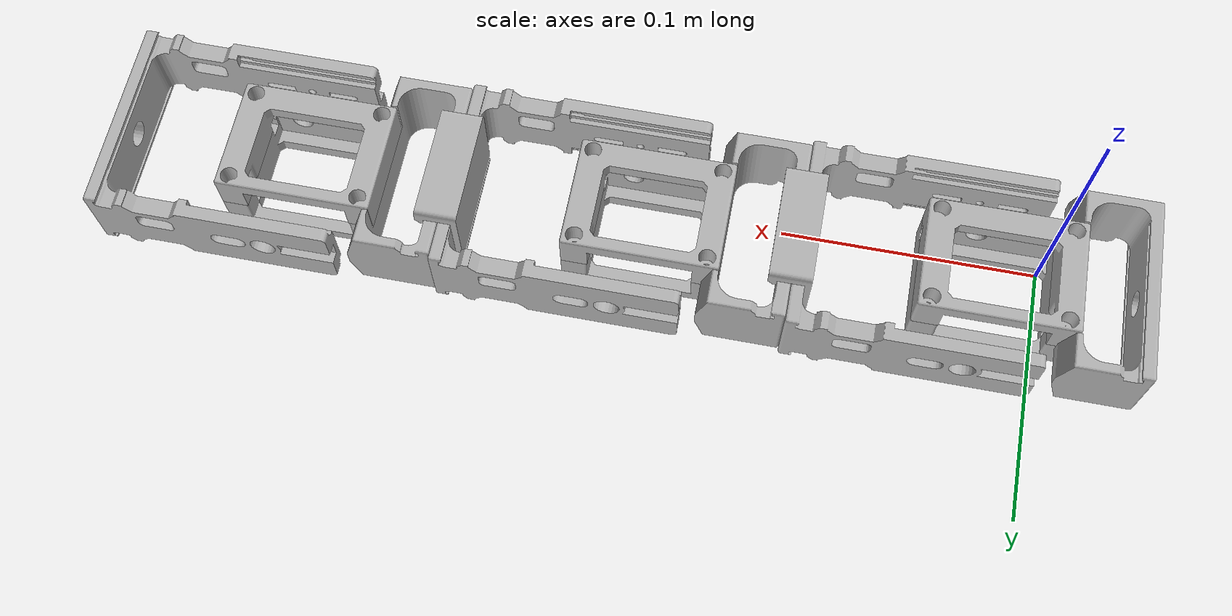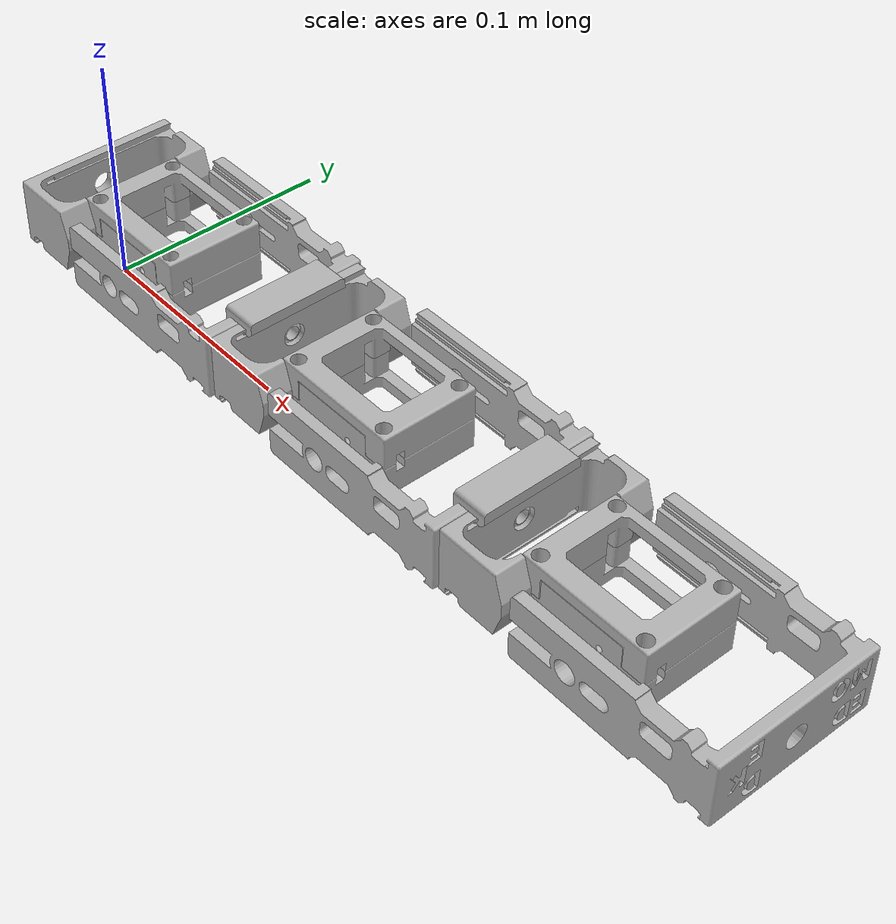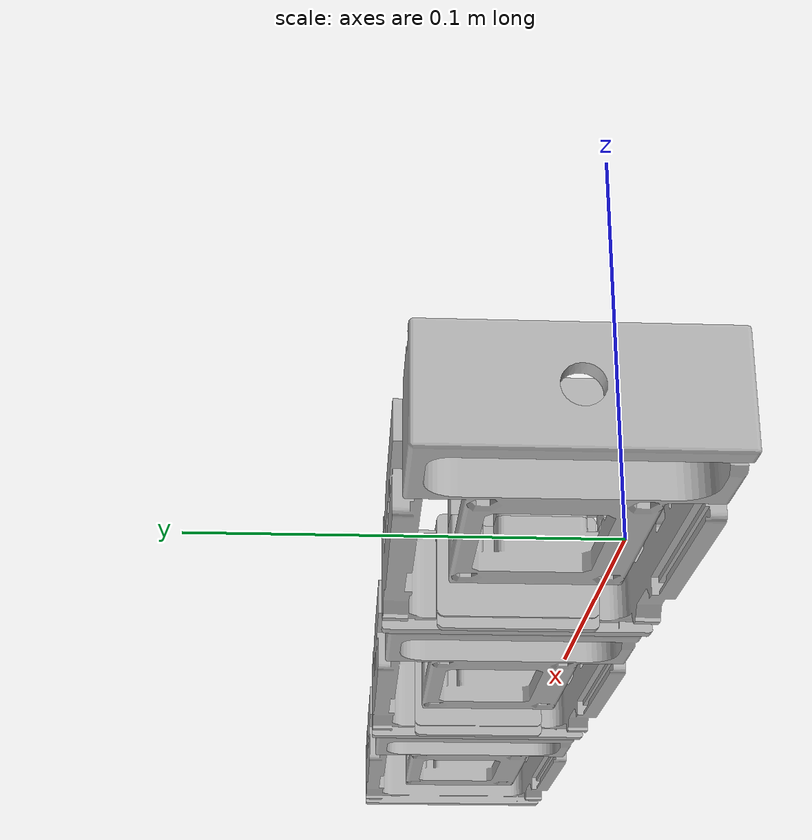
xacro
<?xml version="1.0" ?>
<robot name="edmo_snake" xmlns:xacro="http://www.ros.org/wiki/xacro">

<xacro:include filename="$(find edmo_snake_description)/urdf/materials.xacro" />
<xacro:include filename="$(find edmo_snake_description)/urdf/edmo_snake.trans" />
<xacro:include filename="$(find edmo_snake_description)/urdf/edmo_snake.gazebo" />

<link name="dummy">
</link>

<link name="base_link">
  <inertial>
    <origin xyz="-0.005007218473459374 0.012097251893188315 0.016720619639640767" rpy="0 0 0"/>
    <mass value="0.03847845253485034"/>
    <inertia ixx="2.2e-05" iyy="3.3e-05" izz="4.9e-05" ixy="2e-06" iyz="0.0" ixz="3e-06"/>
  </inertial>
  <visual>
    <origin xyz="0 0 0" rpy="0 0 0"/>
    <geometry>
      <mesh filename="package://edmo_snake_description/meshes/base_link.stl" scale="0.001 0.001 0.001"/>
    </geometry>
    <material name="silver"/>
  </visual>
  <collision>
    <origin xyz="0 0 0" rpy="0 0 0"/>
    <geometry>
      <mesh filename="package://edmo_snake_description/meshes/base_link.stl" scale="0.001 0.001 0.001"/>
    </geometry>
  </collision>
</link>

<link name="arm_1_1">
  <inertial>
    <origin xyz="0.01945776199314793 -0.027540516201431886 0.02290733232110153" rpy="0 0 0"/>
    <mass value="0.03728860045356832"/>
    <inertia ixx="4.1e-05" iyy="3.7e-05" izz="7.3e-05" ixy="0.0" iyz="0.0" ixz="0.0"/>
  </inertial>
  <visual>
    <origin xyz="-0.038414 -0.041832 0.002983" rpy="0 0 0"/>
    <geometry>
      <mesh filename="package://edmo_snake_description/meshes/arm_1_1.stl" scale="0.001 0.001 0.001"/>
    </geometry>
    <material name="silver"/>
  </visual>
  <collision>
    <origin xyz="-0.038414 -0.041832 0.002983" rpy="0 0 0"/>
    <geometry>
      <mesh filename="package://edmo_snake_description/meshes/arm_1_1.stl" scale="0.001 0.001 0.001"/>
    </geometry>
  </collision>
</link>

<link name="cover_1_1">
  <inertial>
    <origin xyz="-0.024705167127436287 0.01692961887353248 0.008504948193972128" rpy="0 0 0"/>
    <mass value="0.014555566232575165"/>
    <inertia ixx="3e-06" iyy="8e-06" izz="1e-05" ixy="-0.0" iyz="0.0" ixz="-0.0"/>
  </inertial>
  <visual>
    <origin xyz="-0.043315 0.003782 -0.02005" rpy="0 0 0"/>
    <geometry>
      <mesh filename="package://edmo_snake_description/meshes/cover_1_1.stl" scale="0.001 0.001 0.001"/>
    </geometry>
    <material name="silver"/>
  </visual>
  <collision>
    <origin xyz="-0.043315 0.003782 -0.02005" rpy="0 0 0"/>
    <geometry>
      <mesh filename="package://edmo_snake_description/meshes/cover_1_1.stl" scale="0.001 0.001 0.001"/>
    </geometry>
  </collision>
</link>

<link name="straight_connector_1_1">
  <inertial>
    <origin xyz="0.002551839107067355 -3.695547974580382e-07 0.007885618930935433" rpy="0 0 0"/>
    <mass value="0.007137238748366013"/>
    <inertia ixx="2e-06" iyy="1e-06" izz="1e-06" ixy="-0.0" iyz="0.0" ixz="-0.0"/>
  </inertial>
  <visual>
    <origin xyz="-0.089365 -0.014468 -0.0201" rpy="0 0 0"/>
    <geometry>
      <mesh filename="package://edmo_snake_description/meshes/straight_connector_1_1.stl" scale="0.001 0.001 0.001"/>
    </geometry>
    <material name="silver"/>
  </visual>
  <collision>
    <origin xyz="-0.089365 -0.014468 -0.0201" rpy="0 0 0"/>
    <geometry>
      <mesh filename="package://edmo_snake_description/meshes/straight_connector_1_1.stl" scale="0.001 0.001 0.001"/>
    </geometry>
  </collision>
</link>

<link name="base_2_1">
  <inertial>
    <origin xyz="0.03347778152654057 -0.0023707481068117025 -0.0033293803603586837" rpy="0 0 0"/>
    <mass value="0.03847845253485034"/>
    <inertia ixx="2.2e-05" iyy="3.3e-05" izz="4.9e-05" ixy="2e-06" iyz="0.0" ixz="3e-06"/>
  </inertial>
  <visual>
    <origin xyz="-0.094365 -0.014468 -0.0201" rpy="0 0 0"/>
    <geometry>
      <mesh filename="package://edmo_snake_description/meshes/base_2_1.stl" scale="0.001 0.001 0.001"/>
    </geometry>
    <material name="silver"/>
  </visual>
  <collision>
    <origin xyz="-0.094365 -0.014468 -0.0201" rpy="0 0 0"/>
    <geometry>
      <mesh filename="package://edmo_snake_description/meshes/base_2_1.stl" scale="0.001 0.001 0.001"/>
    </geometry>
  </collision>
</link>

<link name="cover_2_1">
  <inertial>
    <origin xyz="-0.0247051671274362 0.016929618873532466 0.008504948193972663" rpy="0 0 0"/>
    <mass value="0.014555566232575165"/>
    <inertia ixx="3e-06" iyy="8e-06" izz="1e-05" ixy="-0.0" iyz="0.0" ixz="-0.0"/>
  </inertial>
  <visual>
    <origin xyz="-0.176165 0.003782 -0.0201" rpy="0 0 0"/>
    <geometry>
      <mesh filename="package://edmo_snake_description/meshes/cover_2_1.stl" scale="0.001 0.001 0.001"/>
    </geometry>
    <material name="silver"/>
  </visual>
  <collision>
    <origin xyz="-0.176165 0.003782 -0.0201" rpy="0 0 0"/>
    <geometry>
      <mesh filename="package://edmo_snake_description/meshes/cover_2_1.stl" scale="0.001 0.001 0.001"/>
    </geometry>
  </collision>
</link>

<link name="arm_2_1">
  <inertial>
    <origin xyz="0.019407761993148254 -0.16039051620143224 0.02290733232110207" rpy="0 0 0"/>
    <mass value="0.03728860045356832"/>
    <inertia ixx="4.1e-05" iyy="3.7e-05" izz="7.3e-05" ixy="0.0" iyz="0.0" ixz="0.0"/>
  </inertial>
  <visual>
    <origin xyz="-0.171314 -0.174682 0.002933" rpy="0 0 0"/>
    <geometry>
      <mesh filename="package://edmo_snake_description/meshes/arm_2_1.stl" scale="0.001 0.001 0.001"/>
    </geometry>
    <material name="silver"/>
  </visual>
  <collision>
    <origin xyz="-0.171314 -0.174682 0.002933" rpy="0 0 0"/>
    <geometry>
      <mesh filename="package://edmo_snake_description/meshes/arm_2_1.stl" scale="0.001 0.001 0.001"/>
    </geometry>
  </collision>
</link>

<link name="straight_connector_2_1">
  <inertial>
    <origin xyz="0.002551839107067605 -3.6955479817100956e-07 0.007885618930935943" rpy="0 0 0"/>
    <mass value="0.007137238748366013"/>
    <inertia ixx="2e-06" iyy="1e-06" izz="1e-06" ixy="-0.0" iyz="0.0" ixz="-0.0"/>
  </inertial>
  <visual>
    <origin xyz="-0.222215 -0.014468 -0.02015" rpy="0 0 0"/>
    <geometry>
      <mesh filename="package://edmo_snake_description/meshes/straight_connector_2_1.stl" scale="0.001 0.001 0.001"/>
    </geometry>
    <material name="silver"/>
  </visual>
  <collision>
    <origin xyz="-0.222215 -0.014468 -0.02015" rpy="0 0 0"/>
    <geometry>
      <mesh filename="package://edmo_snake_description/meshes/straight_connector_2_1.stl" scale="0.001 0.001 0.001"/>
    </geometry>
  </collision>
</link>

<link name="base_3_1">
  <inertial>
    <origin xyz="0.03347778152654096 -0.00237074810681245 -0.003329380360358153" rpy="0 0 0"/>
    <mass value="0.03847845253485034"/>
    <inertia ixx="2.2e-05" iyy="3.3e-05" izz="4.9e-05" ixy="2e-06" iyz="0.0" ixz="3e-06"/>
  </inertial>
  <visual>
    <origin xyz="-0.227215 -0.014468 -0.02015" rpy="0 0 0"/>
    <geometry>
      <mesh filename="package://edmo_snake_description/meshes/base_3_1.stl" scale="0.001 0.001 0.001"/>
    </geometry>
    <material name="silver"/>
  </visual>
  <collision>
    <origin xyz="-0.227215 -0.014468 -0.02015" rpy="0 0 0"/>
    <geometry>
      <mesh filename="package://edmo_snake_description/meshes/base_3_1.stl" scale="0.001 0.001 0.001"/>
    </geometry>
  </collision>
</link>

<link name="cover_3_1">
  <inertial>
    <origin xyz="-0.024705167127435923 0.01692961887353178 0.0085049481939732" rpy="0 0 0"/>
    <mass value="0.014555566232575165"/>
    <inertia ixx="3e-06" iyy="8e-06" izz="1e-05" ixy="-0.0" iyz="0.0" ixz="-0.0"/>
  </inertial>
  <visual>
    <origin xyz="-0.309015 0.003782 -0.02015" rpy="0 0 0"/>
    <geometry>
      <mesh filename="package://edmo_snake_description/meshes/cover_3_1.stl" scale="0.001 0.001 0.001"/>
    </geometry>
    <material name="silver"/>
  </visual>
  <collision>
    <origin xyz="-0.309015 0.003782 -0.02015" rpy="0 0 0"/>
    <geometry>
      <mesh filename="package://edmo_snake_description/meshes/cover_3_1.stl" scale="0.001 0.001 0.001"/>
    </geometry>
  </collision>
</link>

<link name="arm_3_1">
  <inertial>
    <origin xyz="0.019357761993148204 -0.29324051620143254 0.022907332321102584" rpy="0 0 0"/>
    <mass value="0.03728860045356832"/>
    <inertia ixx="4.1e-05" iyy="3.7e-05" izz="7.3e-05" ixy="0.0" iyz="0.0" ixz="0.0"/>
  </inertial>
  <visual>
    <origin xyz="-0.304214 -0.307532 0.002883" rpy="0 0 0"/>
    <geometry>
      <mesh filename="package://edmo_snake_description/meshes/arm_3_1.stl" scale="0.001 0.001 0.001"/>
    </geometry>
    <material name="silver"/>
  </visual>
  <collision>
    <origin xyz="-0.304214 -0.307532 0.002883" rpy="0 0 0"/>
    <geometry>
      <mesh filename="package://edmo_snake_description/meshes/arm_3_1.stl" scale="0.001 0.001 0.001"/>
    </geometry>
  </collision>
</link>

<joint name="dummy_joint" type="fixed">
  <parent link="dummy"/>
  <child link="base_link"/>
</joint>

<joint name="Rev1" type="continuous">
  <origin xyz="0.038414 0.041832 -0.002983" rpy="0 0 0"/>
  <parent link="base_link"/>
  <child link="arm_1_1"/>
  <axis xyz="-0.0 1.0 -0.0"/>
</joint>

<joint name="Rigid2" type="fixed">
  <origin xyz="0.043315 -0.003782 0.02005" rpy="0 0 0"/>
  <parent link="base_link"/>
  <child link="cover_1_1"/>
</joint>

<joint name="Rigid3" type="fixed">
  <origin xyz="0.050951 -0.027364 0.023083" rpy="0 0 0"/>
  <parent link="arm_1_1"/>
  <child link="straight_connector_1_1"/>
</joint>

<joint name="Rigid5" type="fixed">
  <origin xyz="0.055951 -0.027364 0.023083" rpy="0 0 0"/>
  <parent link="arm_1_1"/>
  <child link="base_2_1"/>
</joint>

<joint name="Rigid7" type="fixed">
  <origin xyz="0.0818 -0.01825 0.0" rpy="0 0 0"/>
  <parent link="base_2_1"/>
  <child link="cover_2_1"/>
</joint>

<joint name="Rev8" type="continuous">
  <origin xyz="0.076949 0.160214 -0.023033" rpy="0 0 0"/>
  <parent link="base_2_1"/>
  <child link="arm_2_1"/>
  <axis xyz="0.0 1.0 -0.0"/>
</joint>

<joint name="Rigid9" type="fixed">
  <origin xyz="0.050901 -0.160214 0.023083" rpy="0 0 0"/>
  <parent link="arm_2_1"/>
  <child link="straight_connector_2_1"/>
</joint>

<joint name="Rigid10" type="fixed">
  <origin xyz="0.055901 -0.160214 0.023083" rpy="0 0 0"/>
  <parent link="arm_2_1"/>
  <child link="base_3_1"/>
</joint>

<joint name="Rigid12" type="fixed">
  <origin xyz="0.0818 -0.01825 0.0" rpy="0 0 0"/>
  <parent link="base_3_1"/>
  <child link="cover_3_1"/>
</joint>

<joint name="Rev13" type="continuous">
  <origin xyz="0.076999 0.293064 -0.023033" rpy="0 0 0"/>
  <parent link="base_3_1"/>
  <child link="arm_3_1"/>
  <axis xyz="-0.0 1.0 -0.0"/>
</joint>

</robot>

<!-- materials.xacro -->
<robot name="edmo_snake" xmlns:xacro="http://www.ros.org/wiki/xacro" >

<material name="silver">
  <color rgba="0.700 0.700 0.700 1.000"/>
</material>

</robot>

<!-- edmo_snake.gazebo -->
<robot name="edmo_snake" xmlns:xacro="http://www.ros.org/wiki/xacro" >

<xacro:property name="body_color" value="Gazebo/Red" />
<xacro:property name="motor_color" value="Gazebo/Black" />

<gazebo reference="base_link">
  <material>${body_color}</material>
  <kp>100000.0</kp>
  <kd>1.0</kd>
  <mu1>20.0</mu1>
  <mu2>20.0</mu2>
  <selfCollide>true</selfCollide>
  <gravity>true</gravity>
</gazebo>

<gazebo reference="arm_1_1">
  <material>${body_color}</material>
  <kp>100000.0</kp>
  <kd>1.0</kd>
  <mu1>20.0</mu1>
  <mu2>20.0</mu2>
  <selfCollide>true</selfCollide>
</gazebo>

<gazebo reference="cover_1_1">
  <material>${body_color}</material>
  <kp>100000.0</kp>
  <kd>1.0</kd>
  <mu1>20.0</mu1>
  <mu2>20.0</mu2>
  <selfCollide>true</selfCollide>
</gazebo>

<gazebo reference="straight_connector_1_1">
  <material>${body_color}</material>
  <kp>100000.0</kp>
  <kd>1.0</kd>
  <mu1>20.0</mu1>
  <mu2>20.0</mu2>
  <selfCollide>true</selfCollide>
</gazebo>

<gazebo reference="clip_connector_1_1">
  <material>${body_color}</material>
  <kp>100000.0</kp>
  <kd>1.0</kd>
  <mu1>20.0</mu1>
  <mu2>20.0</mu2>
  <selfCollide>true</selfCollide>
</gazebo>

<gazebo reference="base_2_1">
  <material>${body_color}</material>
  <kp>100000.0</kp>
  <kd>1.0</kd>
  <mu1>20.0</mu1>
  <mu2>20.0</mu2>
  <selfCollide>true</selfCollide>
</gazebo>

<gazebo reference="cover_2_1">
  <material>${body_color}</material>
  <kp>100000.0</kp>
  <kd>1.0</kd>
  <mu1>20.0</mu1>
  <mu2>20.0</mu2>
  <selfCollide>true</selfCollide>
</gazebo>

<gazebo reference="arm_2_1">
  <material>${body_color}</material>
  <kp>100000.0</kp>
  <kd>1.0</kd>
  <mu1>20.0</mu1>
  <mu2>20.0</mu2>
  <selfCollide>true</selfCollide>
</gazebo>

<gazebo reference="straight_connector_2_1">
  <material>${body_color}</material>
  <kp>100000.0</kp>
  <kd>1.0</kd>
  <mu1>20.0</mu1>
  <mu2>20.0</mu2>
  <selfCollide>true</selfCollide>
</gazebo>

<gazebo reference="clip_connector_2_1">
  <material>${body_color}</material>
  <kp>100000.0</kp>
  <kd>1.0</kd>
  <mu1>20.0</mu1>
  <mu2>20.0</mu2>
  <selfCollide>true</selfCollide>
</gazebo>

<gazebo reference="base_3_1">
  <material>${body_color}</material>
  <kp>100000.0</kp>
  <kd>1.0</kd>
  <mu1>20.0</mu1>
  <mu2>20.0</mu2>
  <selfCollide>true</selfCollide>
</gazebo>

<gazebo reference="cover_3_1">
  <material>${body_color}</material>
  <kp>100000.0</kp>
  <kd>1.0</kd>
  <mu1>20.0</mu1>
  <mu2>20.0</mu2>
  <selfCollide>true</selfCollide>
</gazebo>

<gazebo reference="arm_3_1">
  <material>${body_color}</material>
  <kp>100000.0</kp>
  <kd>1.0</kd>
  <mu1>20.0</mu1>
  <mu2>20.0</mu2>
  <selfCollide>true</selfCollide>
</gazebo>

<gazebo reference="motor_box_1">
  <material>${motor_color}</material>
  <kp>100000.0</kp>
  <kd>1.0</kd>
  <mu1>20.0</mu1>
  <mu2>20.0</mu2>
  <selfCollide>true</selfCollide>
</gazebo>

<gazebo reference="motor_box_2">
  <material>${motor_color}</material>
  <kp>100000.0</kp>
  <kd>1.0</kd>
  <mu1>20.0</mu1>
  <mu2>20.0</mu2>
  <selfCollide>true</selfCollide>
</gazebo>

<gazebo reference="motor_box_3">
  <material>${motor_color}</material>
  <kp>100000.0</kp>
  <kd>1.0</kd>
  <mu1>20.0</mu1>
  <mu2>20.0</mu2>
  <selfCollide>true</selfCollide>
</gazebo>

</robot>
